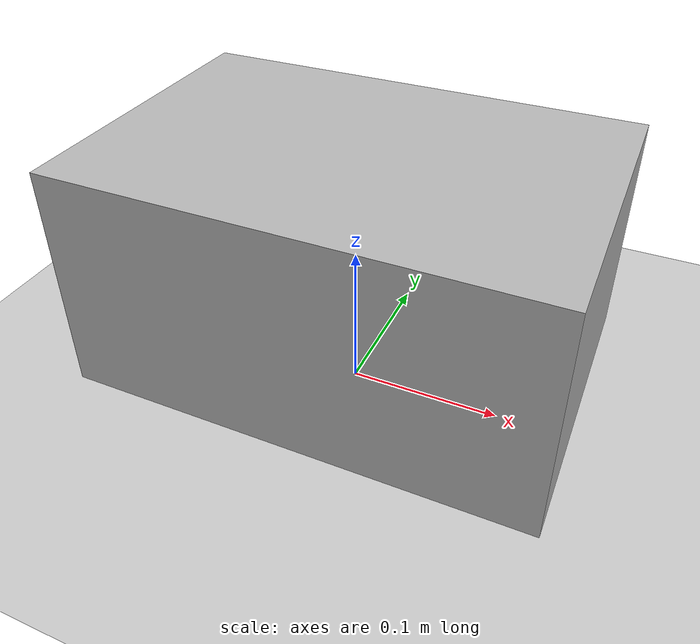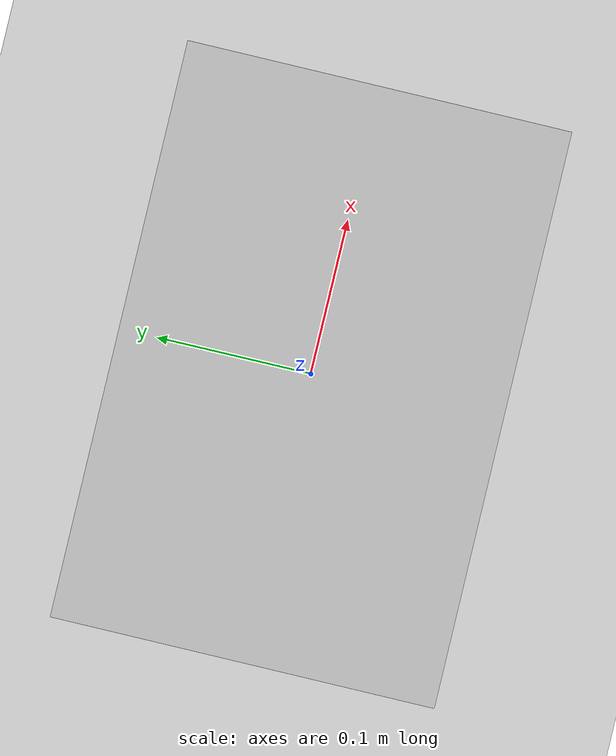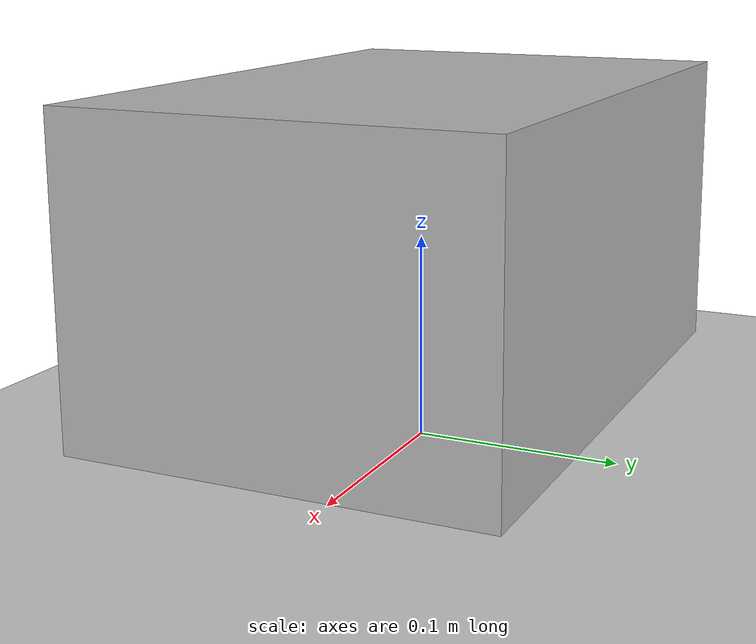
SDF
<?xml version="1.0"?>
<!-- Gazebo Simulation — Auto-generated by Hermod -->
<sdf version="1.9">
  <world name="六轴协作机械臂_world">
    <include>
      <uri>model://sun</uri>
    </include>
    <include>
      <uri>model://ground_plane</uri>
    </include>

    <model name="六轴协作机械臂">
      <pose>0 0 0.1 0 0 0</pose>
      <link name="base_link">
        <inertial>
          <mass>5.0</mass>
          <inertia>
            <ixx>0.1</ixx><ixy>0</ixy><ixz>0</ixz>
            <iyy>0.1</iyy><iyz>0</iyz>
            <izz>0.1</izz>
          </inertia>
        </inertial>
        <visual name="chassis">
          <geometry><box><size>0.3 0.2 0.15</size></box></geometry>
        </visual>
        <collision name="chassis_collision">
          <geometry><box><size>0.3 0.2 0.15</size></box></geometry>
        </collision>
      </link>
    </model>
  </world>
</sdf>
